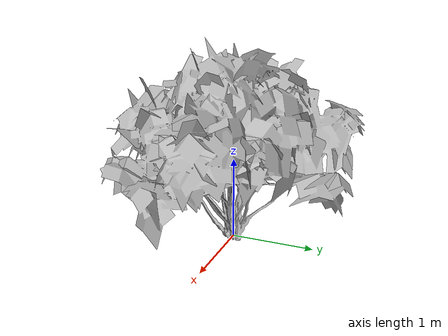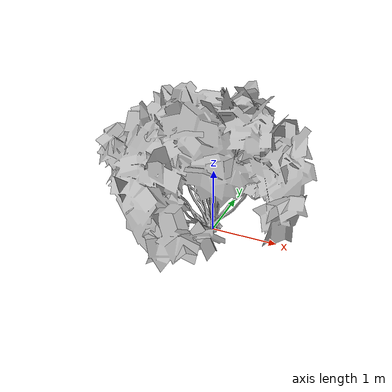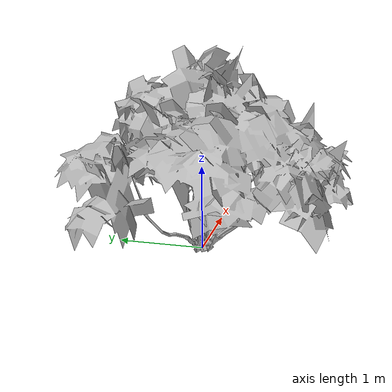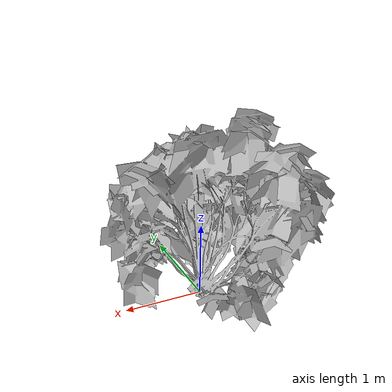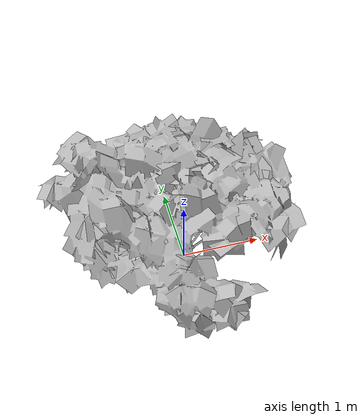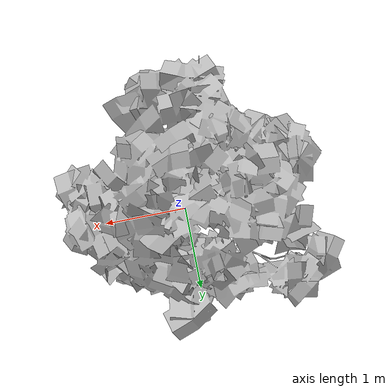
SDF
<?xml version="1.0" ?>
<sdf version="1.5">
  <model name="Bush 3">
     <static>true</static>
    <pose frame=''>0 0 0 1.57079 0 0</pose>
    <link name="link">
      <pose frame=''>0 0 0 0 0 0</pose>
      <collision name="collision">
        <geometry>
          <mesh>
            <scale>5 5 5</scale>
            <uri>model://bush_3/meshes/bush_3.obj</uri>
          </mesh>
        </geometry>
      </collision>
      <visual name="visual">
        <geometry>
          <mesh>

            <scale>5 5 5</scale>
            <uri>model://bush_3/meshes/bush_3.obj</uri>
          </mesh>
        </geometry>
      </visual>
    </link>
  </model>
</sdf>
